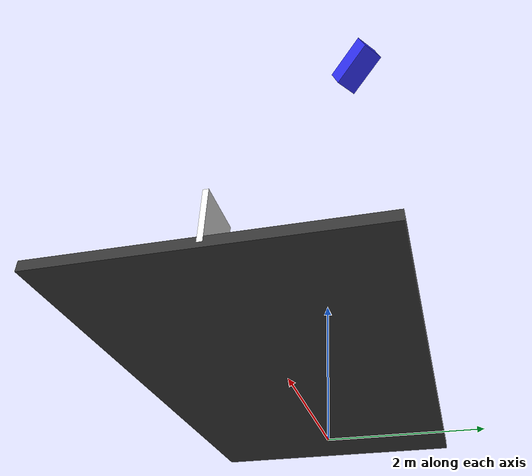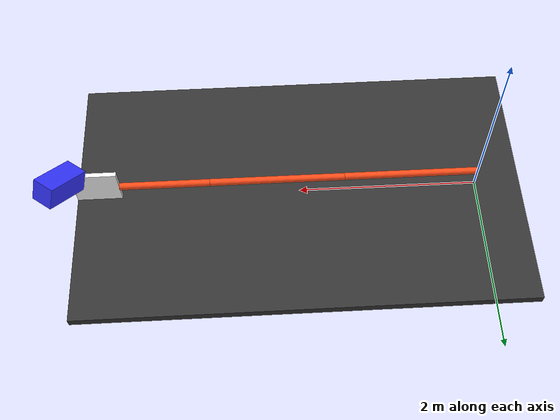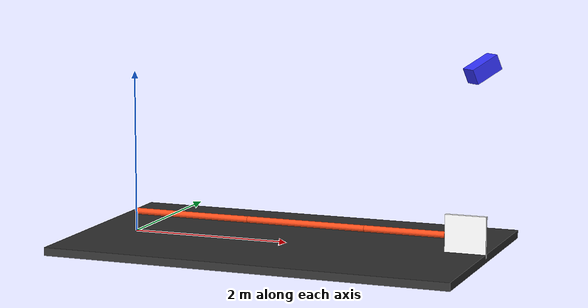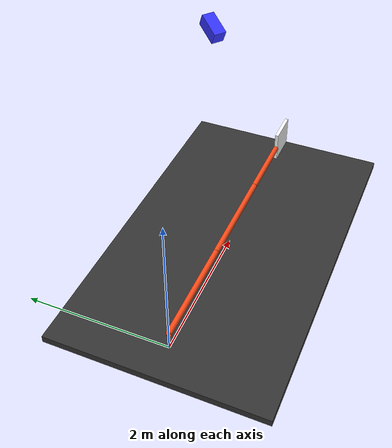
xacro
<?xml version="1.0"?>
<robot xmlns:xacro="http://www.ros.org/wiki/xacro" name="template_package" >

    <xacro:include filename="inertial_macros.xacro"/>

    <xacro:property name="chassis_length" value="0.335"/>
    <xacro:property name="chassis_width" value="0.265"/>
    <xacro:property name="chassis_height" value="0.138"/>
    <xacro:property name="chassis_mass" value="1.0"/>
    <xacro:property name="wheel_radius" value="0.033"/>
    <xacro:property name="wheel_thickness" value="0.026"/>
    <xacro:property name="wheel_mass" value="0.05"/>
    <xacro:property name="wheel_offset_x" value="0.226"/>
    <xacro:property name="wheel_offset_y" value="0.1485"/>
    <xacro:property name="wheel_offset_z" value="0.01"/>
    <xacro:property name="caster_wheel_radius" value="0.01"/>
    <xacro:property name="caster_wheel_mass" value="0.01"/>
    <xacro:property name="caster_wheel_offset_x" value="0.075"/>
    <xacro:property name="caster_wheel_offset_z" value="${wheel_offset_z - wheel_radius + caster_wheel_radius}"/>

    <material name="white">
        <color rgba="1 1 1 1" />
    </material>

    <material name="orange">
        <color rgba="1 0.3 0.1 1"/>
    </material>

    <material name="blue">
        <color rgba="0.2 0.2 1 1"/>
    </material>

    <material name="black">
        <color rgba="0 0 0 1"/>
    </material>

    <material name="red">
        <color rgba="1 0 0 1"/>
    </material>

    <material name="grey">
        <color rgba="0.2 0.2 0.2 1"/>
    </material>

    <link name="world"></link>

    <joint name="world_to_base" type="fixed">
        <parent link="world" />
        <child link="base" />
        <origin  rpy="1.57 0 0" xyz="0 0 0" />
    </joint>

    <link name="base">
        <visual>
            <origin xyz="2 0 0" rpy="0 0 0"/>
            <geometry>
                <box size="5 0.1 3" />
            </geometry>
            <material name="grey" />
        </visual>
    </link>

    <joint name="base_to_l3" type="revolute">
        <parent link="base" />
        <child link="l3" />
        <origin  rpy="0 0 0" xyz="0 0.25 0" />
        <axis rpy="0 0 0" xyz="0 0 1" />
        <limit effort="0.1" lower="-3.1" upper="3.1" velocity="0.2"/>
    </joint>

    <link name="l3">
        <visual>
            <origin xyz="0.75 0 0" rpy="0 1.57 0"/>
            <geometry>
                <cylinder length="1.5" radius="0.04" />
            </geometry>
            <material name="orange" />
        </visual>
    </link>

    <joint name="l3_to_l2" type="revolute">
        <parent link="l3" />
        <child link="l2" />
        <origin rpy="0 0 0" xyz="1.5 0 0" />
        <axis rpy="0 0 0" xyz="0 0 1" />
        <limit effort="0.1" lower="-3.1" upper="3.1" velocity="0.2"/>
    </joint>

    <link name="l2">
        <visual>
            <origin xyz="0.75 0 0" rpy="0 1.57 0"/>
            <geometry>

                <cylinder length="1.5" radius="0.04" />
            </geometry>
            <material name="orange" />
        </visual>
    </link>

    <joint name="l2_to_l1" type="revolute">
        <parent link="l2" />
        <child link="l1" />
        <origin rpy="0 0 0" xyz="1.5 0 0" />
        <axis rpy="0 0 0" xyz="0 0 1" />
        <limit effort="0.1" lower="-3.1" upper="3.1" velocity="0.2"/>
    </joint>

    <link name="l1">
        <visual>
            <origin xyz="0.5 0 0" rpy="0 1.57 0"/>
            <geometry>

                <cylinder length="1" radius="0.04" />
            </geometry>
            <material name="orange" />
        </visual>
    </link>

    <joint name="l1_to_grip" type="revolute">
        <parent link="l1" />
        <child link="grip" />
        <origin rpy="0 0 0" xyz="1 0 0" />
        <axis rpy="0 0 0" xyz="0 0 1" />
        <limit effort="0.1" lower="-3.1" upper="3.1" velocity="0.2"/>
    </joint>

    <link name="grip">
        <visual>
            <origin xyz="0.25 0 0"/>
            <geometry>
                <box size="0.5 0.5 0.05" />
            </geometry>
            <material name="white" />
        </visual>
    </link>

    <joint name="world_to_camera" type="fixed">
        <parent link="world" />
        <child link="camera" />
        <origin  rpy="-2 0 2.5" xyz="4 1 2" />
    </joint>

    <link name="camera">
        <visual>
            <origin xyz="0 0 -0.2"/>
            <geometry>
                <box size="0.2 0.2 0.4" />
            </geometry>
            <material name="blue" />
        </visual>
    </link>

</robot>
